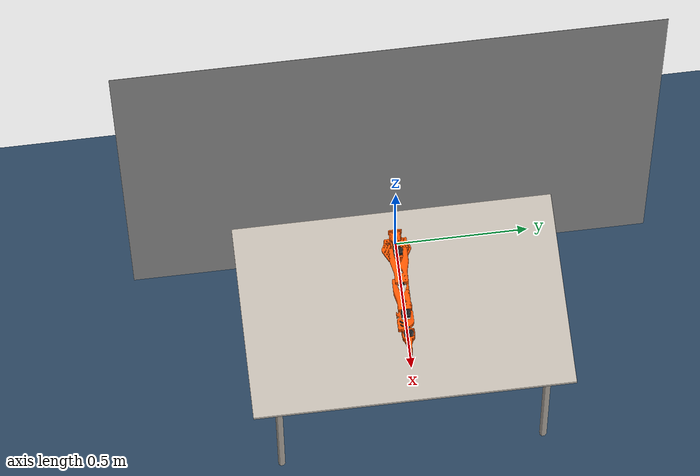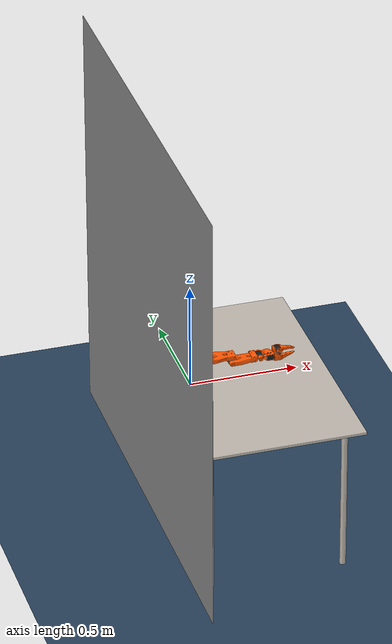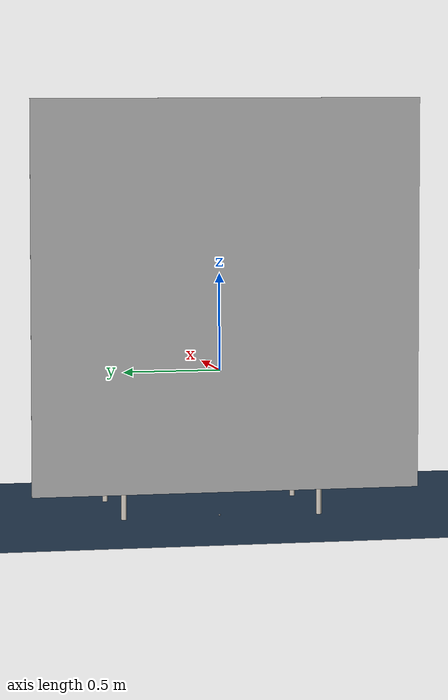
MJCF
<mujoco model="so_arm100 scene">
  <compiler meshdir="assets" texturedir="assets"/>
  <include file="so_arm100.xml"/>

  <statistic center="0.2 0 0.1" extent="0.4"/>

  <visual>
    <headlight diffuse="0.6 0.6 0.6" ambient="0.3 0.3 0.3" specular="0 0 0"/>
    <rgba haze="0.15 0.25 0.35 1"/>
    <global azimuth="140" elevation="-30"/>
  </visual>

  <asset>
    <texture type="skybox" builtin="gradient" rgb1="0.3 0.5 0.7" rgb2="0 0 0" width="512" height="3072"/>
    <texture type="2d" name="groundplane" builtin="checker" mark="edge" rgb1="0.2 0.3 0.4" rgb2="0.1 0.2 0.3"
      markrgb="0.8 0.8 0.8" width="300" height="300"/>
    <material name="groundplane" texture="groundplane" texuniform="true" texrepeat="5 5" reflectance="0.2"/>
    <!-- Table dimensions (length x width x height in meters): 1.21x0.76x0.75 -->
    <mesh file="tablelegs.obj"/>
    <mesh file="tabletop.obj"/>
    <texture type="2d" file="small_meta_table_diffuse.png"/>
    <material name="table" texture="small_meta_table_diffuse"/>

    <!-- Default background texture and material -->
    <texture name="background_default" type="2d" builtin="checker" width="512" height="512" rgb1="0.5 0.5 0.5" rgb2="0.7 0.7 0.7"/>
    <material name="background_board_material" texture="background_default" texuniform="true"/>

    <texture name="bg_tex1" type="2d" file="background1.png"/>
    <texture name="bg_tex2" type="2d" file="background2.png"/>
    <texture name="bg_tex3" type="2d" file="background3.png"/>
    <texture name="bg_tex4" type="2d" file="background4.png"/>
    <texture name="bg_tex5" type="2d" file="background5.png"/>

    <material name="bg_mat1" texture="bg_tex1" texuniform="true"/>
    <material name="bg_mat2" texture="bg_tex2" texuniform="true"/>
    <material name="bg_mat3" texture="bg_tex3" texuniform="true"/>
    <material name="bg_mat4" texture="bg_tex4" texuniform="true"/>
    <material name="bg_mat5" texture="bg_tex5" texuniform="true"/>
  </asset>

  <worldbody>
    <site name="world_x_axis" pos="0.1 0 0" size="0.001" rgba="1 0 0 1" type="sphere"/>
    <site name="world_y_axis" pos="0 0.1 0" size="0.001" rgba="0 1 0 1" type="sphere"/>
    <site name="world_z_axis" pos="0 0 0.1" size="0.001" rgba="0 0 1 1" type="sphere"/>
    <site name="world_origin" pos="0 0 0" size="0.008" rgba="1 1 0 0.6" type="sphere"/>
    <light pos="0 0 1.5" dir="0 0 -1" directional="true"/>
    <geom name="floor" size="2 2 0.05" type="plane" material="groundplane" pos="0 0 -.75"/>
    <site name="worldref" pos="0 0 -0.75"/>
    <geom mesh="tabletop" material="table" class="visual" pos="0.25 0 -0.75" />
    <geom mesh="tablelegs" material="table" class="visual" pos="0.25 0 -0.75"/>
    <geom name="table" pos="0.25 0 -0.1000" size="0.61 0.37 0.1" type="box" class="collision" solref="0.001 1" solimp="0.99 0.99 0.01"/>
    <!-- Big background board behind the robot -->
    <geom name="background_board" type="plane" size="1 1 0.01" pos="-0.2 0 0.4" quat="0.5 0.5 0.5 0.5" material="background_board_material"/>
    <!-- camera -->
    <camera name="top_view" pos="0.25 0 0.5" xyaxes="0 -1 0 1 0 0" mode="fixed"/>
    <camera name="front_view" pos="0.8 0 0.1" xyaxes="0 1 0 0 0 1" mode="fixed"/>
    <camera name="main_cam" pos="0.751 -0.399 0.516" xyaxes="0.548 0.836 -0.000 -0.345 0.226 0.911"/>

    <!-- pick-and-place sites -->
    <body name="object_cylinder" pos="0 0 0.03">
      <joint name="object_free" type="free"/>
      <geom name="object_geom" type="box" size="0.01 0.01 0.01" rgba="0.8 0.2 0.2 1" mass="0.1"/>
      <site name="object_site" pos="0 0 0.01" size="0.001" rgba="0 0 0 0" type="sphere"/>
    </body>

    <site name="place_site" pos="0 0 0" size="0.005" rgba="0 1 0 1" type="sphere"/>
  </worldbody>

  <keyframe>
    <key name="home" qpos="0 0 0 0 0 0  0 0 0 1 0 0 0" ctrl="0 0 0 0 0 0"/>
  </keyframe>

</mujoco>

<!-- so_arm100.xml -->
<mujoco model="so_arm100">
  <compiler angle="radian" meshdir="assets/"/>

  <option cone="elliptic" impratio="10"/>
  <visual>
    <global offwidth="1920" offheight="1080"/>
  </visual>
  <asset>
    <material name="orange" rgba="1.0 0.331 0.0 1.0" specular="0.1" shininess="0.1"/>
    <material name="black" rgba="0.1 0.1 0.1 1.0" specular="0.1" shininess="0.1"/>

    <mesh name="Base" file="Base.stl"/>
    <mesh name="Base_Motor" file="Base_Motor.stl"/>
    <mesh name="Rotation_Pitch" file="Rotation_Pitch.stl"/>
    <mesh name="Rotation_Pitch_Motor" file="Rotation_Pitch_Motor.stl"/>
    <mesh name="Upper_Arm" file="Upper_Arm.stl"/>
    <mesh name="Upper_Arm_Motor" file="Upper_Arm_Motor.stl"/>
    <mesh name="Lower_Arm" file="Lower_Arm.stl"/>
    <mesh name="Lower_Arm_Motor" file="Lower_Arm_Motor.stl"/>
    <mesh name="Wrist_Pitch_Roll" file="Wrist_Pitch_Roll.stl"/>
    <mesh name="Wrist_Pitch_Roll_Motor" file="Wrist_Pitch_Roll_Motor.stl"/>
    <mesh name="Fixed_Jaw" file="Fixed_Jaw.stl"/>
    <mesh name="Fixed_Jaw_Motor" file="Fixed_Jaw_Motor.stl"/>
    <mesh name="Fixed_Jaw_Collision_1" file="Fixed_Jaw_Collision_1.stl"/>
    <mesh name="Fixed_Jaw_Collision_2" file="Fixed_Jaw_Collision_2.stl"/>
    <mesh name="Moving_Jaw" file="Moving_Jaw.stl"/>
    <mesh name="Moving_Jaw_Collision_1" file="Moving_Jaw_Collision_1.stl"/>
    <mesh name="Moving_Jaw_Collision_2" file="Moving_Jaw_Collision_2.stl"/>
    <mesh name="Moving_Jaw_Collision_3" file="Moving_Jaw_Collision_3.stl"/>
  </asset>

  <default>
    <default class="so_arm100">
      <joint frictionloss="0.1" armature="0.1"/>
      <position kp="70" dampratio="1" forcerange="-35 35" ctrlrange="-3.14158 3.14158"/>

      <default class="Rotation">
        <joint axis="0 1 0" range="-2.2 2.2"/>
      </default>
      <default class="Pitch">
        <joint axis="1 0 0" range="-1.85 1.57079"/>
      </default>
      <default class="Elbow">
        <joint axis="1 0 0" range="-1.57079 1.57079"/>
      </default>
      <default class="Wrist_Pitch">
        <joint axis="1 0 0" range="-3.14158 0.1"/>
      </default>
      <default class="Wrist_Roll">
        <joint axis="0 1 0" range="-3.14158 3.14158"/>
      </default>
      <default class="Jaw">
        <joint axis="0 0 1" range="-0.2 0.6"/>
      </default>
      <default class="visual">
        <geom type="mesh" contype="0" conaffinity="0" density="0" group="2" material="orange"/>
        <default class="motor_visual">
          <geom material="black"/>
        </default>
      </default>
      <default class="collision">
        <geom group="3" type="mesh"/>
        <default class="finger_collision">
          <geom type="box" solimp="0.9 0.95 0.01" solref="0.001 1" friction="1 500 10"/>
        </default>
      </default>
    </default>
  </default>

  <worldbody>
    <body name="Base" pos="0 0 0" euler="0 0 1.57079" childclass="so_arm100">
      <geom type="mesh" mesh="Base" class="visual"/>
      <geom type="mesh" mesh="Base_Motor" class="motor_visual"/>
      <geom type="mesh" mesh="Base" class="collision"/>
      <body name="Rotation_Pitch" pos="0 -0.0452 0.0165" quat="0.707105 0.707108 0 0">
        <inertial pos="-9.07886e-05 0.0590972 0.031089" quat="0.363978 0.441169 -0.623108 0.533504" mass="0.119226"
          diaginertia="5.94278e-05 5.89975e-05 3.13712e-05"/>
        <joint name="Rotation" class="Rotation"/>
        <geom type="mesh" mesh="Rotation_Pitch" class="visual"/>
        <geom type="mesh" mesh="Rotation_Pitch_Motor" class="motor_visual"/>
        <geom type="mesh" mesh="Rotation_Pitch" class="collision"/>
        <body name="Upper_Arm" pos="0 0.1025 0.0306" euler="1.57079 0 0">
          <inertial pos="-1.72052e-05 0.0701802 0.00310545" quat="0.50104 0.498994 -0.493562 0.50632" mass="0.162409"
            diaginertia="0.000213312 0.000167164 7.01522e-05"/>
          <joint name="Pitch" class="Pitch" ref="1.57079"/>
          <geom type="mesh" mesh="Upper_Arm" class="visual"/>
          <geom type="mesh" mesh="Upper_Arm_Motor" class="motor_visual"/>
          <geom type="mesh" mesh="Upper_Arm" class="collision"/>
          <body name="Lower_Arm" pos="0 0.11257 0.028" euler="-1.57079 0 0">
            <inertial pos="-0.00339604 0.00137796 0.0768007" quat="0.701995 0.0787996 0.0645626 0.704859"
              mass="0.147968" diaginertia="0.000138803 0.000107748 4.84242e-05"/>
            <joint name="Elbow" class="Elbow" ref="-1.57079"/>
            <geom type="mesh" mesh="Lower_Arm" class="visual"/>
            <geom type="mesh" mesh="Lower_Arm_Motor" class="motor_visual"/>
            <geom type="mesh" mesh="Lower_Arm" class="collision"/>
            <body name="Wrist_Pitch_Roll" pos="0 0.0052 0.1349" euler="-1.57079 0 0">
              <inertial pos="-0.00852653 -0.0352279 -2.34622e-05" quat="-0.0522806 0.705235 0.0549524 0.704905"
                mass="0.0661321" diaginertia="3.45403e-05 2.39041e-05 1.94704e-05"/>
              <joint name="Wrist_Pitch" class="Wrist_Pitch" ref="-1.57079"/>
              <geom type="mesh" mesh="Wrist_Pitch_Roll" class="visual"/>
              <geom type="mesh" mesh="Wrist_Pitch_Roll_Motor" class="motor_visual"/>
              <geom type="mesh" mesh="Wrist_Pitch_Roll" class="collision"/>
              <body name="Fixed_Jaw" pos="0 -0.0601 0" euler="0 1.57079 0">
                <inertial pos="0.00552377 -0.0280167 0.000483583" quat="0.41836 0.620891 -0.350644 0.562599"
                  mass="0.0929859" diaginertia="5.03136e-05 4.64098e-05 2.72961e-05"/>
                <joint name="Wrist_Roll" class="Wrist_Roll"  ref="1.57079"/>
                <geom type="mesh" mesh="Fixed_Jaw" class="visual"/>
                <geom type="mesh" mesh="Fixed_Jaw_Motor" class="motor_visual"/>
                <geom type="mesh" mesh="Fixed_Jaw_Collision_1" class="collision"/>
                <geom type="mesh" mesh="Fixed_Jaw_Collision_2" class="collision"/>
                <geom class="finger_collision" name="fixed_jaw_pad_1" size="0.001 0.005 0.004" pos="0.0089 -0.1014 0"/>
                <geom class="finger_collision" name="fixed_jaw_pad_2" size="0.001 0.005 0.006" pos="0.0109 -0.0914 0"/>
                <geom class="finger_collision" name="fixed_jaw_pad_3" size="0.001 0.01 0.007" pos="0.0126 -0.0768 0"/>
                <geom class="finger_collision" name="fixed_jaw_pad_4" size="0.001 0.01 0.008" pos="0.0143 -0.0572 0"/>
                <site name="gripper_site" pos="-0.005 -0.08 0" size="0.003" rgba="0 0 0 0" type="sphere"/>

                <body name="Moving_Jaw" pos="-0.0202 -0.0244 0" quat="1.34924e-11 -3.67321e-06 1 -3.67321e-06">
                  <inertial pos="-0.00161745 -0.0303473 0.000449646" quat="0.696562 0.716737 -0.0239844 -0.0227026"
                    mass="0.0202444" diaginertia="1.11265e-05 8.99651e-06 2.99548e-06"/>
                  <joint name="Jaw" class="Jaw"/>
                  <geom type="mesh" mesh="Moving_Jaw" class="visual"/>
                  <geom type="mesh" mesh="Moving_Jaw_Collision_1" class="collision"/>
                  <geom type="mesh" mesh="Moving_Jaw_Collision_2" class="collision"/>
                  <geom type="mesh" mesh="Moving_Jaw_Collision_3" class="collision"/>
                  <geom class="finger_collision" name="moving_jaw_pad_1" size="0.001 0.005 0.004" pos="-0.0113 -0.077 0"/>
                  <geom class="finger_collision" name="moving_jaw_pad_2" size="0.001 0.005 0.006" pos="-0.0093 -0.067 0"/>
                  <geom class="finger_collision" name="moving_jaw_pad_3" size="0.001 0.01 0.006" pos="-0.0073 -0.055 0"/>
                  <geom class="finger_collision" name="moving_jaw_pad_4" size="0.001 0.01 0.008" pos="-0.0073 -0.035 0"/>
                </body>
              </body>
            </body>
          </body>
        </body>
      </body>
    </body>
  </worldbody>

  <actuator>
    <position class="Rotation" name="Rotation" joint="Rotation"/>
    <position class="Pitch" name="Pitch" joint="Pitch"/>
    <position class="Elbow" name="Elbow" joint="Elbow"/>
    <position class="Wrist_Pitch" name="Wrist_Pitch" joint="Wrist_Pitch"/>
    <position class="Wrist_Roll" name="Wrist_Roll" joint="Wrist_Roll"/>
    <position class="Jaw" name="Jaw" joint="Jaw" ctrlrange="-0.2 0.6"/>
  </actuator>

  <contact>
    <exclude body1="Base" body2="Rotation_Pitch"/>
  </contact>

</mujoco>
